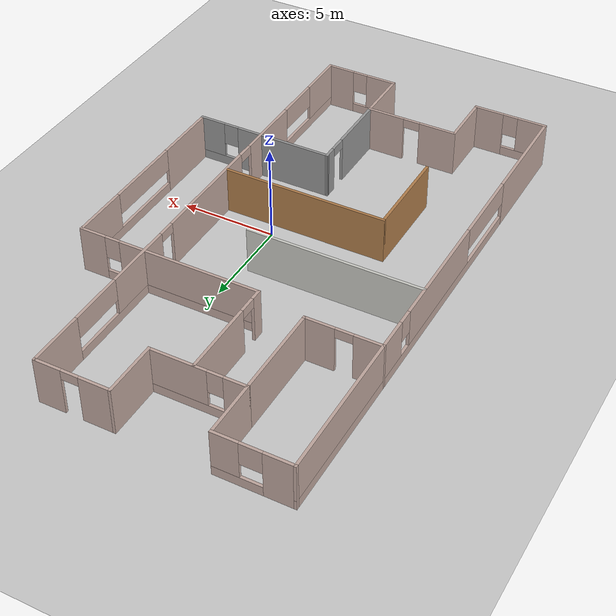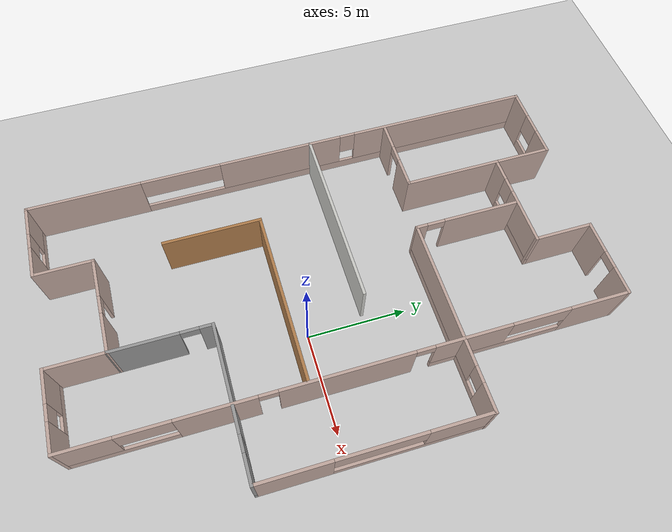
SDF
<sdf version="1.6">
 <world name="default">
  <light name="sun" type="directional">
   <pose>0 0 10 0 -0 0</pose>
   <diffuse>0.8 0.8 0.8 1</diffuse>
   <specular>0.2 0.2 0.2 1</specular>
   <attenuation>
    <range>1000</range>
    <constant>0.9</constant>
    <linear>0.01</linear>
    <quadratic>0.001</quadratic>
   </attenuation>
   <direction>-0.5 0.1 -0.9</direction>
  </light>
  <model name="ground_plane">
   <static>1</static>
   <link name="link">
    <collision name="collision">
     <geometry><plane><normal>0 0 1</normal><size>100 100</size></plane></geometry>
     <surface><friction><ode><mu>100</mu><mu2>50</mu2></ode></friction></surface>
    </collision>
    <visual name="visual">
     <cast_shadows>0</cast_shadows>
     <geometry><plane><normal>0 0 1</normal><size>100 100</size></plane></geometry>
     <material>
      <script><uri>file://media/materials/scripts/gazebo.material</uri><name>Gazebo/Grey</name></script>
     </material>
    </visual>
   </link>
  </model>
  <gravity>0 0 -9.8</gravity>
  <magnetic_field>6e-06 2.3e-05 -4.2e-05</magnetic_field>
  <atmosphere type="adiabatic"/>
  <physics name="default_physics" default="0" type="ode">
   <max_step_size>0.001</max_step_size>
   <real_time_factor>1</real_time_factor>
   <real_time_update_rate>1000</real_time_update_rate>
  </physics>
  <scene><ambient>0.4 0.4 0.4 1</ambient><background>0.7 0.7 0.7 1</background><shadows>1</shadows></scene>
  <spherical_coordinates>
   <surface_model>EARTH_WGS84</surface_model>
   <latitude_deg>0</latitude_deg>
   <longitude_deg>0</longitude_deg>
   <elevation>0</elevation>
   <heading_deg>0</heading_deg>
  </spherical_coordinates>
  <model name="single_floor">
   <pose>-1.52056 1.42908 0 0 0 -1.57006</pose>
   <link name="Wall_12">
    <pose>0 4.5203 0 0 -0 0</pose>
    <visual name="Wall_12_Visual_0">
     <pose>-11.8654 0 1.25 0 -0 0</pose>
     <geometry><box><size>3.0192 0.15 2.5</size></box></geometry>
     <material>
      <script><uri>file://media/materials/scripts/gazebo.material</uri><name>Gazebo/Grey</name></script>
      <ambient>0.760784 0.662745 0.627451 1</ambient>
     </material>
     <meta><layer>0</layer></meta>
    </visual>
    <collision name="Wall_12_Collision_0">
     <geometry><box><size>3.0192 0.15 2.5</size></box></geometry>
     <pose>-11.8654 0 1.25 0 -0 0</pose>
    </collision>
    <visual name="Wall_12_Visual_1">
     <pose>0.396367 0 1.25 0 -0 0</pose>
     <geometry><box><size>6.35864 0.15 2.5</size></box></geometry>
     <material>
      <script><uri>file://media/materials/scripts/gazebo.material</uri><name>Gazebo/Grey</name></script>
      <ambient>0.760784 0.662745 0.627451 1</ambient>
     </material>
     <meta><layer>0</layer></meta>
    </visual>
    <collision name="Wall_12_Collision_1">
     <geometry><box><size>6.35864 0.15 2.5</size></box></geometry>
     <pose>0.396367 0 1.25 0 -0 0</pose>
    </collision>
    <visual name="Wall_12_Visual_2">
     <pose>6.35303 0 1.25 0 -0 0</pose>
     <geometry><box><size>3.75468 0.15 2.5</size></box></geometry>
     <material>
      <script><uri>file://media/materials/scripts/gazebo.material</uri><name>Gazebo/Grey</name></script>
      <ambient>0.760784 0.662745 0.627451 1</ambient>
     </material>
     <meta><layer>0</layer></meta>
    </visual>
    <collision name="Wall_12_Collision_2">
     <geometry><box><size>3.75468 0.15 2.5</size></box></geometry>
     <pose>6.35303 0 1.25 0 -0 0</pose>
    </collision>
    <visual name="Wall_12_Visual_3">
     <pose>-7.01938 0 0.25 0 -0 0</pose>
     <geometry><box><size>6.67285 0.15 0.5</size></box></geometry>
     <material>
      <script><uri>file://media/materials/scripts/gazebo.material</uri><name>Gazebo/Grey</name></script>
      <ambient>0.760784 0.662745 0.627451 1</ambient>
     </material>
     <meta><layer>0</layer></meta>
    </visual>
    <collision name="Wall_12_Collision_3">
     <geometry><box><size>6.67285 0.15 0.5</size></box></geometry>
     <pose>-7.01938 0 0.25 0 -0 0</pose>
    </collision>
    <visual name="Wall_12_Visual_4">
     <pose>10.8027 0 0.25 0 -0 0</pose>
     <geometry><box><size>5.14463 0.15 0.5</size></box></geometry>
     <material>
      <script><uri>file://media/materials/scripts/gazebo.material</uri><name>Gazebo/Grey</name></script>
      <ambient>0.760784 0.662745 0.627451 1</ambient>
     </material>
     <meta><layer>0</layer></meta>
    </visual>
    <collision name="Wall_12_Collision_4">
     <geometry><box><size>5.14463 0.15 0.5</size></box></geometry>
     <pose>10.8027 0 0.25 0 -0 0</pose>
    </collision>
    <visual name="Wall_12_Visual_5">
     <pose>-5.57131 0 1.5 0 -0 0</pose>
     <geometry><box><size>3.77672 0.15 2</size></box></geometry>
     <material>
      <script><uri>file://media/materials/scripts/gazebo.material</uri><name>Gazebo/Grey</name></script>
      <ambient>0.760784 0.662745 0.627451 1</ambient>
     </material>
     <meta><layer>0</layer></meta>
    </visual>
    <collision name="Wall_12_Collision_5">
     <geometry><box><size>3.77672 0.15 2</size></box></geometry>
     <pose>-5.57131 0 1.5 0 -0 0</pose>
    </collision>
    <visual name="Wall_12_Visual_6">
     <pose>-5.57131 0 1.5 0 -0 0</pose>
     <geometry><box><size>3.77672 0.15 2</size></box></geometry>
     <material>
      <script><uri>file://media/materials/scripts/gazebo.material</uri><name>Gazebo/Grey</name></script>
      <ambient>0.760784 0.662745 0.627451 1</ambient>
     </material>
     <meta><layer>0</layer></meta>
    </visual>
    <collision name="Wall_12_Collision_6">
     <geometry><box><size>3.77672 0.15 2</size></box></geometry>
     <pose>-5.57131 0 1.5 0 -0 0</pose>
    </collision>
    <visual name="Wall_12_Visual_7">
     <pose>12.0657 0 1.5 0 -0 0</pose>
     <geometry><box><size>2.61859 0.15 2</size></box></geometry>
     <material>
      <script><uri>file://media/materials/scripts/gazebo.material</uri><name>Gazebo/Grey</name></script>
      <ambient>0.760784 0.662745 0.627451 1</ambient>
     </material>
     <meta><layer>0</layer></meta>
    </visual>
    <collision name="Wall_12_Collision_7">
     <geometry><box><size>2.61859 0.15 2</size></box></geometry>
     <pose>12.0657 0 1.5 0 -0 0</pose>
    </collision>
    <visual name="Wall_12_Visual_8">
     <pose>-8.90774 0 1.9 0 -0 0</pose>
     <geometry><box><size>2.89613 0.15 1.2</size></box></geometry>
     <material>
      <script><uri>file://media/materials/scripts/gazebo.material</uri><name>Gazebo/Grey</name></script>
      <ambient>0.760784 0.662745 0.627451 1</ambient>
     </material>
     <meta><layer>0</layer></meta>
    </visual>
    <collision name="Wall_12_Collision_8">
     <geometry><box><size>2.89613 0.15 1.2</size></box></geometry>
     <pose>-8.90774 0 1.9 0 -0 0</pose>
    </collision>
    <visual name="Wall_12_Visual_9">
     <pose>9.49339 0 1.9 0 -0 0</pose>
     <geometry><box><size>2.52604 0.15 1.2</size></box></geometry>
     <material>
      <script><uri>file://media/materials/scripts/gazebo.material</uri><name>Gazebo/Grey</name></script>
      <ambient>0.760784 0.662745 0.627451 1</ambient>
     </material>
     <meta><layer>0</layer></meta>
    </visual>
    <collision name="Wall_12_Collision_9">
     <geometry><box><size>2.52604 0.15 1.2</size></box></geometry>
     <pose>9.49339 0 1.9 0 -0 0</pose>
    </collision>
    <visual name="Wall_12_Visual_10">
     <pose>4.02569 0 2.25 0 -0 0</pose>
     <geometry><box><size>0.9 0.15 0.5</size></box></geometry>
     <material>
      <script><uri>file://media/materials/scripts/gazebo.material</uri><name>Gazebo/Grey</name></script>
      <ambient>0.760784 0.662745 0.627451 1</ambient>
     </material>
     <meta><layer>0</layer></meta>
    </visual>
    <collision name="Wall_12_Collision_10">
     <geometry><box><size>0.9 0.15 0.5</size></box></geometry>
     <pose>4.02569 0 2.25 0 -0 0</pose>
    </collision>
    <visual name="Wall_12_Visual_11">
     <pose>-3.23295 0 2.25 0 -0 0</pose>
     <geometry><box><size>0.9 0.15 0.5</size></box></geometry>
     <material>
      <script><uri>file://media/materials/scripts/gazebo.material</uri><name>Gazebo/Grey</name></script>
      <ambient>0.760784 0.662745 0.627451 1</ambient>
     </material>
     <meta><layer>0</layer></meta>
    </visual>
    <collision name="Wall_12_Collision_11">
     <geometry><box><size>0.9 0.15 0.5</size></box></geometry>
     <pose>-3.23295 0 2.25 0 -0 0</pose>
    </collision>
    <visual name="Wall_12_Visual_12">
     <pose>-3.23295 0 2.25 0 -0 0</pose>
     <geometry><box><size>0.9 0.15 0.5</size></box></geometry>
     <material>
      <script><uri>file://media/materials/scripts/gazebo.material</uri><name>Gazebo/Grey</name></script>
      <ambient>0.760784 0.662745 0.627451 1</ambient>
     </material>
     <meta><layer>0</layer></meta>
    </visual>
    <collision name="Wall_12_Collision_12">
     <geometry><box><size>0.9 0.15 0.5</size></box></geometry>
     <pose>-3.23295 0 2.25 0 -0 0</pose>
    </collision>
   </link>
   <link name="Wall_124">
    <pose>0.326152 8.01661 0 0 -0 3.14159</pose>
    <visual name="Wall_124_Visual_0">
     <pose>-3.58525 0 1.25 0 -0 0</pose>
     <geometry><box><size>3.5795 0.15 2.5</size></box></geometry>
     <material>
      <script><uri>file://media/materials/scripts/gazebo.material</uri><name>Gazebo/Grey</name></script>
      <ambient>0.760784 0.662745 0.627451 1</ambient>
     </material>
     <meta><layer>0</layer></meta>
    </visual>
    <collision name="Wall_124_Collision_0">
     <geometry><box><size>3.5795 0.15 2.5</size></box></geometry>
     <pose>-3.58525 0 1.25 0 -0 0</pose>
    </collision>
    <visual name="Wall_124_Visual_1">
     <pose>1.78975 0 0.25 0 -0 0</pose>
     <geometry><box><size>7.17051 0.15 0.5</size></box></geometry>
     <material>
      <script><uri>file://media/materials/scripts/gazebo.material</uri><name>Gazebo/Grey</name></script>
      <ambient>0.760784 0.662745 0.627451 1</ambient>
     </material>
     <meta><layer>0</layer></meta>
    </visual>
    <collision name="Wall_124_Collision_1">
     <geometry><box><size>7.17051 0.15 0.5</size></box></geometry>
     <pose>1.78975 0 0.25 0 -0 0</pose>
    </collision>
    <visual name="Wall_124_Visual_2">
     <pose>3.89635 0 1.5 0 -0 0</pose>
     <geometry><box><size>2.9573 0.15 2</size></box></geometry>
     <material>
      <script><uri>file://media/materials/scripts/gazebo.material</uri><name>Gazebo/Grey</name></script>
      <ambient>0.760784 0.662745 0.627451 1</ambient>
     </material>
     <meta><layer>0</layer></meta>
    </visual>
    <collision name="Wall_124_Collision_2">
     <geometry><box><size>2.9573 0.15 2</size></box></geometry>
     <pose>3.89635 0 1.5 0 -0 0</pose>
    </collision>
    <visual name="Wall_124_Visual_3">
     <pose>0.3111 0 1.9 0 -0 0</pose>
     <geometry><box><size>4.21321 0.15 1.2</size></box></geometry>
     <material>
      <script><uri>file://media/materials/scripts/gazebo.material</uri><name>Gazebo/Grey</name></script>
      <ambient>0.760784 0.662745 0.627451 1</ambient>
     </material>
     <meta><layer>0</layer></meta>
    </visual>
    <collision name="Wall_124_Collision_3">
     <geometry><box><size>4.21321 0.15 1.2</size></box></geometry>
     <pose>0.3111 0 1.9 0 -0 0</pose>
    </collision>
   </link>
   <link name="Wall_13">
    <pose>13.3 2.59531 0 0 0 -1.5708</pose>
    <visual name="Wall_13_Visual_0">
     <pose>-1.23668 0 1.25 0 -0 0</pose>
     <geometry><box><size>1.52664 0.15 2.5</size></box></geometry>
     <material>
      <script><uri>file://media/materials/scripts/gazebo.material</uri><name>Gazebo/Grey</name></script>
      <ambient>0.760784 0.662745 0.627451 1</ambient>
     </material>
     <meta><layer>0</layer></meta>
    </visual>
    <collision name="Wall_13_Collision_0">
     <geometry><box><size>1.52664 0.15 2.5</size></box></geometry>
     <pose>-1.23668 0 1.25 0 -0 0</pose>
    </collision>
    <visual name="Wall_13_Visual_1">
     <pose>0.76332 0 0.25 0 -0 0</pose>
     <geometry><box><size>2.47336 0.15 0.5</size></box></geometry>
     <material>
      <script><uri>file://media/materials/scripts/gazebo.material</uri><name>Gazebo/Grey</name></script>
      <ambient>0.760784 0.662745 0.627451 1</ambient>
     </material>
     <meta><layer>0</layer></meta>
    </visual>
    <collision name="Wall_13_Collision_1">
     <geometry><box><size>2.47336 0.15 0.5</size></box></geometry>
     <pose>0.76332 0 0.25 0 -0 0</pose>
    </collision>
    <visual name="Wall_13_Visual_2">
     <pose>1.16332 0 1.5 0 -0 0</pose>
     <geometry><box><size>1.67336 0.15 2</size></box></geometry>
     <material>
      <script><uri>file://media/materials/scripts/gazebo.material</uri><name>Gazebo/Grey</name></script>
      <ambient>0.760784 0.662745 0.627451 1</ambient>
     </material>
     <meta><layer>0</layer></meta>
    </visual>
    <collision name="Wall_13_Collision_2">
     <geometry><box><size>1.67336 0.15 2</size></box></geometry>
     <pose>1.16332 0 1.5 0 -0 0</pose>
    </collision>
    <visual name="Wall_13_Visual_3">
     <pose>-0.07336 0 1.9 0 -0 0</pose>
     <geometry><box><size>0.8 0.15 1.2</size></box></geometry>
     <material>
      <script><uri>file://media/materials/scripts/gazebo.material</uri><name>Gazebo/Grey</name></script>
      <ambient>0.760784 0.662745 0.627451 1</ambient>
     </material>
     <meta><layer>0</layer></meta>
    </visual>
    <collision name="Wall_13_Collision_3">
     <geometry><box><size>0.8 0.15 1.2</size></box></geometry>
     <pose>-0.07336 0 1.9 0 -0 0</pose>
    </collision>
   </link>
   <link name="Wall_14">
    <collision name="Wall_14_Collision">
     <geometry><box><size>3 0.15 2.5</size></box></geometry>
     <pose>0 0 1.25 0 -0 0</pose>
    </collision>
    <visual name="Wall_14_Visual">
     <pose>0 0 1.25 0 -0 0</pose>
     <geometry><box><size>3 0.15 2.5</size></box></geometry>
     <material>
      <script><uri>file://media/materials/scripts/gazebo.material</uri><name>Gazebo/Grey</name></script>
      <ambient>0.760784 0.662745 0.627451 1</ambient>
     </material>
     <meta><layer>0</layer></meta>
    </visual>
    <pose>11.875 0.670305 0 0 -0 3.14159</pose>
   </link>
   <link name="Wall_15">
    <pose>10.45 -1.75469 0 0 0 -1.5708</pose>
    <visual name="Wall_15_Visual_0">
     <pose>-1.46979 0 1.25 0 -0 0</pose>
     <geometry><box><size>2.06043 0.15 2.5</size></box></geometry>
     <material>
      <script><uri>file://media/materials/scripts/gazebo.material</uri><name>Gazebo/Grey</name></script>
      <ambient>0.760784 0.662745 0.627451 1</ambient>
     </material>
     <meta><layer>0</layer></meta>
    </visual>
    <collision name="Wall_15_Collision_0">
     <geometry><box><size>2.06043 0.15 2.5</size></box></geometry>
     <pose>-1.46979 0 1.25 0 -0 0</pose>
    </collision>
    <visual name="Wall_15_Visual_1">
     <pose>1.48021 0 1.25 0 -0 0</pose>
     <geometry><box><size>2.03957 0.15 2.5</size></box></geometry>
     <material>
      <script><uri>file://media/materials/scripts/gazebo.material</uri><name>Gazebo/Grey</name></script>
      <ambient>0.760784 0.662745 0.627451 1</ambient>
     </material>
     <meta><layer>0</layer></meta>
    </visual>
    <collision name="Wall_15_Collision_1">
     <geometry><box><size>2.03957 0.15 2.5</size></box></geometry>
     <pose>1.48021 0 1.25 0 -0 0</pose>
    </collision>
    <visual name="Wall_15_Visual_2">
     <pose>0.010427 0 2.25 0 -0 0</pose>
     <geometry><box><size>0.9 0.15 0.5</size></box></geometry>
     <material>
      <script><uri>file://media/materials/scripts/gazebo.material</uri><name>Gazebo/Grey</name></script>
      <ambient>0.760784 0.662745 0.627451 1</ambient>
     </material>
     <meta><layer>0</layer></meta>
    </visual>
    <collision name="Wall_15_Collision_2">
     <geometry><box><size>0.9 0.15 0.5</size></box></geometry>
     <pose>0.010427 0 2.25 0 -0 0</pose>
    </collision>
   </link>
   <link name="Wall_16">
    <collision name="Wall_16_Collision">
     <geometry><box><size>3 0.15 2.5</size></box></geometry>
     <pose>0 0 1.25 0 -0 0</pose>
    </collision>
    <visual name="Wall_16_Visual">
     <pose>0 0 1.25 0 -0 0</pose>
     <geometry><box><size>3 0.15 2.5</size></box></geometry>
     <material>
      <script><uri>file://media/materials/scripts/gazebo.material</uri><name>Gazebo/Grey</name></script>
      <ambient>0.760784 0.662745 0.627451 1</ambient>
     </material>
     <meta><layer>0</layer></meta>
    </visual>
    <pose>11.875 -4.17969 0 0 -0 0</pose>
   </link>
   <link name="Wall_17">
    <pose>13.3 -6.1047 0 0 0 -1.5708</pose>
    <visual name="Wall_17_Visual_0">
     <pose>-1.18199 0 1.25 0 -0 0</pose>
     <geometry><box><size>1.63601 0.15 2.5</size></box></geometry>
     <material>
      <script><uri>file://media/materials/scripts/gazebo.material</uri><name>Gazebo/Grey</name></script>
      <ambient>0.760784 0.662745 0.627451 1</ambient>
     </material>
     <meta><layer>0</layer></meta>
    </visual>
    <collision name="Wall_17_Collision_0">
     <geometry><box><size>1.63601 0.15 2.5</size></box></geometry>
     <pose>-1.18199 0 1.25 0 -0 0</pose>
    </collision>
    <visual name="Wall_17_Visual_1">
     <pose>0.818006 0 0.25 0 -0 0</pose>
     <geometry><box><size>2.36399 0.15 0.5</size></box></geometry>
     <material>
      <script><uri>file://media/materials/scripts/gazebo.material</uri><name>Gazebo/Grey</name></script>
      <ambient>0.760784 0.662745 0.627451 1</ambient>
     </material>
     <meta><layer>0</layer></meta>
    </visual>
    <collision name="Wall_17_Collision_1">
     <geometry><box><size>2.36399 0.15 0.5</size></box></geometry>
     <pose>0.818006 0 0.25 0 -0 0</pose>
    </collision>
    <visual name="Wall_17_Visual_2">
     <pose>1.21801 0 1.5 0 -0 0</pose>
     <geometry><box><size>1.56399 0.15 2</size></box></geometry>
     <material>
      <script><uri>file://media/materials/scripts/gazebo.material</uri><name>Gazebo/Grey</name></script>
      <ambient>0.760784 0.662745 0.627451 1</ambient>
     </material>
     <meta><layer>0</layer></meta>
    </visual>
    <collision name="Wall_17_Collision_2">
     <geometry><box><size>1.56399 0.15 2</size></box></geometry>
     <pose>1.21801 0 1.5 0 -0 0</pose>
    </collision>
    <visual name="Wall_17_Visual_3">
     <pose>0.036011 0 1.9 0 -0 0</pose>
     <geometry><box><size>0.8 0.15 1.2</size></box></geometry>
     <material>
      <script><uri>file://media/materials/scripts/gazebo.material</uri><name>Gazebo/Grey</name></script>
      <ambient>0.760784 0.662745 0.627451 1</ambient>
     </material>
     <meta><layer>0</layer></meta>
    </visual>
    <collision name="Wall_17_Collision_3">
     <geometry><box><size>0.8 0.15 1.2</size></box></geometry>
     <pose>0.036011 0 1.9 0 -0 0</pose>
    </collision>
   </link>
   <link name="Wall_18">
    <pose>0 -8.0297 0 0 -0 3.14159</pose>
    <visual name="Wall_18_Visual_0">
     <pose>-10.4624 0 1.25 0 -0 0</pose>
     <geometry><box><size>5.82521 0.15 2.5</size></box></geometry>
     <material>
      <script><uri>file://media/materials/scripts/gazebo.material</uri><name>Gazebo/Grey</name></script>
      <ambient>0.760784 0.662745 0.627451 1</ambient>
     </material>
     <meta><layer>0</layer></meta>
    </visual>
    <collision name="Wall_18_Collision_0">
     <geometry><box><size>5.82521 0.15 2.5</size></box></geometry>
     <pose>-10.4624 0 1.25 0 -0 0</pose>
    </collision>
    <visual name="Wall_18_Visual_1">
     <pose>2.9126 0 0.25 0 -0 0</pose>
     <geometry><box><size>20.9248 0.15 0.5</size></box></geometry>
     <material>
      <script><uri>file://media/materials/scripts/gazebo.material</uri><name>Gazebo/Grey</name></script>
      <ambient>0.760784 0.662745 0.627451 1</ambient>
     </material>
     <meta><layer>0</layer></meta>
    </visual>
    <collision name="Wall_18_Collision_1">
     <geometry><box><size>20.9248 0.15 0.5</size></box></geometry>
     <pose>2.9126 0 0.25 0 -0 0</pose>
    </collision>
    <visual name="Wall_18_Visual_2">
     <pose>-0.153899 0 1.5 0 -0 0</pose>
     <geometry><box><size>6.51142 0.15 2</size></box></geometry>
     <material>
      <script><uri>file://media/materials/scripts/gazebo.material</uri><name>Gazebo/Grey</name></script>
      <ambient>0.760784 0.662745 0.627451 1</ambient>
     </material>
     <meta><layer>0</layer></meta>
    </visual>
    <collision name="Wall_18_Collision_2">
     <geometry><box><size>6.51142 0.15 2</size></box></geometry>
     <pose>-0.153899 0 1.5 0 -0 0</pose>
    </collision>
    <visual name="Wall_18_Visual_3">
     <pose>8.63841 0 1.5 0 -0 0</pose>
     <geometry><box><size>9.47319 0.15 2</size></box></geometry>
     <material>
      <script><uri>file://media/materials/scripts/gazebo.material</uri><name>Gazebo/Grey</name></script>
      <ambient>0.760784 0.662745 0.627451 1</ambient>
     </material>
     <meta><layer>0</layer></meta>
    </visual>
    <collision name="Wall_18_Collision_3">
     <geometry><box><size>9.47319 0.15 2</size></box></geometry>
     <pose>8.63841 0 1.5 0 -0 0</pose>
    </collision>
    <visual name="Wall_18_Visual_4">
     <pose>-5.4797 0 1.9 0 -0 0</pose>
     <geometry><box><size>4.14018 0.15 1.2</size></box></geometry>
     <material>
      <script><uri>file://media/materials/scripts/gazebo.material</uri><name>Gazebo/Grey</name></script>
      <ambient>0.760784 0.662745 0.627451 1</ambient>
     </material>
     <meta><layer>0</layer></meta>
    </visual>
    <collision name="Wall_18_Collision_4">
     <geometry><box><size>4.14018 0.15 1.2</size></box></geometry>
     <pose>-5.4797 0 1.9 0 -0 0</pose>
    </collision>
    <visual name="Wall_18_Visual_5">
     <pose>3.50181 0 1.9 0 -0 0</pose>
     <geometry><box><size>0.8 0.15 1.2</size></box></geometry>
     <material>
      <script><uri>file://media/materials/scripts/gazebo.material</uri><name>Gazebo/Grey</name></script>
      <ambient>0.760784 0.662745 0.627451 1</ambient>
     </material>
     <meta><layer>0</layer></meta>
    </visual>
    <collision name="Wall_18_Collision_5">
     <geometry><box><size>0.8 0.15 1.2</size></box></geometry>
     <pose>3.50181 0 1.9 0 -0 0</pose>
    </collision>
   </link>
   <link name="Wall_19">
    <pose>-13.3 -6.1047 0 0 -0 1.5708</pose>
    <visual name="Wall_19_Visual_0">
     <pose>-1.22646 0 1.25 0 -0 0</pose>
     <geometry><box><size>1.54707 0.15 2.5</size></box></geometry>
     <material>
      <script><uri>file://media/materials/scripts/gazebo.material</uri><name>Gazebo/Grey</name></script>
      <ambient>0.760784 0.662745 0.627451 1</ambient>
     </material>
     <meta><layer>0</layer></meta>
    </visual>
    <collision name="Wall_19_Collision_0">
     <geometry><box><size>1.54707 0.15 2.5</size></box></geometry>
     <pose>-1.22646 0 1.25 0 -0 0</pose>
    </collision>
    <visual name="Wall_19_Visual_1">
     <pose>0.773535 0 0.25 0 -0 0</pose>
     <geometry><box><size>2.45293 0.15 0.5</size></box></geometry>
     <material>
      <script><uri>file://media/materials/scripts/gazebo.material</uri><name>Gazebo/Grey</name></script>
      <ambient>0.760784 0.662745 0.627451 1</ambient>
     </material>
     <meta><layer>0</layer></meta>
    </visual>
    <collision name="Wall_19_Collision_1">
     <geometry><box><size>2.45293 0.15 0.5</size></box></geometry>
     <pose>0.773535 0 0.25 0 -0 0</pose>
    </collision>
    <visual name="Wall_19_Visual_2">
     <pose>1.32306 0 1.5 0 -0 0</pose>
     <geometry><box><size>1.35388 0.15 2</size></box></geometry>
     <material>
      <script><uri>file://media/materials/scripts/gazebo.material</uri><name>Gazebo/Grey</name></script>
      <ambient>0.760784 0.662745 0.627451 1</ambient>
     </material>
     <meta><layer>0</layer></meta>
    </visual>
    <collision name="Wall_19_Collision_2">
     <geometry><box><size>1.35388 0.15 2</size></box></geometry>
     <pose>1.32306 0 1.5 0 -0 0</pose>
    </collision>
    <visual name="Wall_19_Visual_3">
     <pose>0.096595 0 1.9 0 -0 0</pose>
     <geometry><box><size>1.09905 0.15 1.2</size></box></geometry>
     <material>
      <script><uri>file://media/materials/scripts/gazebo.material</uri><name>Gazebo/Grey</name></script>
      <ambient>0.760784 0.662745 0.627451 1</ambient>
     </material>
     <meta><layer>0</layer></meta>
    </visual>
    <collision name="Wall_19_Collision_3">
     <geometry><box><size>1.09905 0.15 1.2</size></box></geometry>
     <pose>0.096595 0 1.9 0 -0 0</pose>
    </collision>
   </link>
   <link name="Wall_20">
    <collision name="Wall_20_Collision">
     <geometry><box><size>3 0.15 2.5</size></box></geometry>
     <pose>0 0 1.25 0 -0 0</pose>
    </collision>
    <visual name="Wall_20_Visual">
     <pose>0 0 1.25 0 -0 0</pose>
     <geometry><box><size>3 0.15 2.5</size></box></geometry>
     <material>
      <script><uri>file://media/materials/scripts/gazebo.material</uri><name>Gazebo/Grey</name></script>
      <ambient>0.760784 0.662745 0.627451 1</ambient>
     </material>
     <meta><layer>0</layer></meta>
    </visual>
    <pose>-11.875 -4.17969 0 0 -0 0</pose>
   </link>
   <link name="Wall_21">
    <pose>-10.45 -1.75469 0 0 -0 1.5708</pose>
    <visual name="Wall_21_Visual_0">
     <pose>-1.88532 0 1.25 0 -0 0</pose>
     <geometry><box><size>1.22936 0.15 2.5</size></box></geometry>
     <material>
      <script><uri>file://media/materials/scripts/gazebo.material</uri><name>Gazebo/Grey</name></script>
      <ambient>0.760784 0.662745 0.627451 1</ambient>
     </material>
     <meta><layer>0</layer></meta>
    </visual>
    <collision name="Wall_21_Collision_0">
     <geometry><box><size>1.22936 0.15 2.5</size></box></geometry>
     <pose>-1.88532 0 1.25 0 -0 0</pose>
    </collision>
    <visual name="Wall_21_Visual_1">
     <pose>0.614679 0 0.25 0 -0 0</pose>
     <geometry><box><size>3.77064 0.15 0.5</size></box></geometry>
     <material>
      <script><uri>file://media/materials/scripts/gazebo.material</uri><name>Gazebo/Grey</name></script>
      <ambient>0.760784 0.662745 0.627451 1</ambient>
     </material>
     <meta><layer>0</layer></meta>
    </visual>
    <collision name="Wall_21_Collision_1">
     <geometry><box><size>3.77064 0.15 0.5</size></box></geometry>
     <pose>0.614679 0 0.25 0 -0 0</pose>
    </collision>
    <visual name="Wall_21_Visual_2">
     <pose>1.01468 0 1.5 0 -0 0</pose>
     <geometry><box><size>2.97064 0.15 2</size></box></geometry>
     <material>
      <script><uri>file://media/materials/scripts/gazebo.material</uri><name>Gazebo/Grey</name></script>
      <ambient>0.760784 0.662745 0.627451 1</ambient>
     </material>
     <meta><layer>0</layer></meta>
    </visual>
    <collision name="Wall_21_Collision_2">
     <geometry><box><size>2.97064 0.15 2</size></box></geometry>
     <pose>1.01468 0 1.5 0 -0 0</pose>
    </collision>
    <visual name="Wall_21_Visual_3">
     <pose>-0.870641 0 1.9 0 -0 0</pose>
     <geometry><box><size>0.8 0.15 1.2</size></box></geometry>
     <material>
      <script><uri>file://media/materials/scripts/gazebo.material</uri><name>Gazebo/Grey</name></script>
      <ambient>0.760784 0.662745 0.627451 1</ambient>
     </material>
     <meta><layer>0</layer></meta>
    </visual>
    <collision name="Wall_21_Collision_3">
     <geometry><box><size>0.8 0.15 1.2</size></box></geometry>
     <pose>-0.870641 0 1.9 0 -0 0</pose>
    </collision>
   </link>
   <link name="Wall_22">
    <collision name="Wall_22_Collision">
     <geometry><box><size>3 0.15 2.5</size></box></geometry>
     <pose>0 0 1.25 0 -0 0</pose>
    </collision>
    <visual name="Wall_22_Visual">
     <pose>0 0 1.25 0 -0 0</pose>
     <geometry><box><size>3 0.15 2.5</size></box></geometry>
     <material>
      <script><uri>file://media/materials/scripts/gazebo.material</uri><name>Gazebo/Grey</name></script>
      <ambient>0.760784 0.662745 0.627451 1</ambient>
     </material>
     <meta><layer>0</layer></meta>
    </visual>
    <pose>-11.875 0.670305 0 0 -0 3.14159</pose>
   </link>
   <link name="Wall_23">
    <pose>-13.3 2.59531 0 0 -0 1.5708</pose>
    <visual name="Wall_23_Visual_0">
     <pose>-1.16623 0 1.25 0 -0 0</pose>
     <geometry><box><size>1.66753 0.15 2.5</size></box></geometry>
     <material>
      <script><uri>file://media/materials/scripts/gazebo.material</uri><name>Gazebo/Grey</name></script>
      <ambient>0.760784 0.662745 0.627451 1</ambient>
     </material>
     <meta><layer>0</layer></meta>
    </visual>
    <collision name="Wall_23_Collision_0">
     <geometry><box><size>1.66753 0.15 2.5</size></box></geometry>
     <pose>-1.16623 0 1.25 0 -0 0</pose>
    </collision>
    <visual name="Wall_23_Visual_1">
     <pose>1.28377 0 1.25 0 -0 0</pose>
     <geometry><box><size>1.43247 0.15 2.5</size></box></geometry>
     <material>
      <script><uri>file://media/materials/scripts/gazebo.material</uri><name>Gazebo/Grey</name></script>
      <ambient>0.760784 0.662745 0.627451 1</ambient>
     </material>
     <meta><layer>0</layer></meta>
    </visual>
    <collision name="Wall_23_Collision_1">
     <geometry><box><size>1.43247 0.15 2.5</size></box></geometry>
     <pose>1.28377 0 1.25 0 -0 0</pose>
    </collision>
    <visual name="Wall_23_Visual_2">
     <pose>0.117534 0 2.25 0 -0 0</pose>
     <geometry><box><size>0.9 0.15 0.5</size></box></geometry>
     <material>
      <script><uri>file://media/materials/scripts/gazebo.material</uri><name>Gazebo/Grey</name></script>
      <ambient>0.760784 0.662745 0.627451 1</ambient>
     </material>
     <meta><layer>0</layer></meta>
    </visual>
    <collision name="Wall_23_Collision_2">
     <geometry><box><size>0.9 0.15 0.5</size></box></geometry>
     <pose>0.117534 0 2.25 0 -0 0</pose>
    </collision>
   </link>
   <link name="Wall_26">
    <pose>8.03808 0.668458 0 0 0 -3.14083</pose>
    <visual name="Wall_26_Visual_0">
     <pose>-0.810666 0 1.25 0 -0 0</pose>
     <geometry><box><size>3.35252 0.15 2.5</size></box></geometry>
     <material>
      <script><uri>file://media/materials/scripts/gazebo.material</uri><name>Gazebo/Grey</name></script>
      <ambient>1 1 1 1</ambient>
     </material>
     <meta><layer>0</layer></meta>
    </visual>
    <collision name="Wall_26_Collision_0">
     <geometry><box><size>3.35252 0.15 2.5</size></box></geometry>
     <pose>-0.810666 0 1.25 0 -0 0</pose>
    </collision>
    <visual name="Wall_26_Visual_1">
     <pose>2.12626 0 1.25 0 -0 0</pose>
     <geometry><box><size>0.721333 0.15 2.5</size></box></geometry>
     <material>
      <script><uri>file://media/materials/scripts/gazebo.material</uri><name>Gazebo/Grey</name></script>
      <ambient>1 1 1 1</ambient>
     </material>
     <meta><layer>0</layer></meta>
    </visual>
    <collision name="Wall_26_Collision_1">
     <geometry><box><size>0.721333 0.15 2.5</size></box></geometry>
     <pose>2.12626 0 1.25 0 -0 0</pose>
    </collision>
    <visual name="Wall_26_Visual_2">
     <pose>1.31559 0 2.25 0 -0 0</pose>
     <geometry><box><size>0.9 0.15 0.5</size></box></geometry>
     <material>
      <script><uri>file://media/materials/scripts/gazebo.material</uri><name>Gazebo/Grey</name></script>
      <ambient>1 1 1 1</ambient>
     </material>
     <meta><layer>0</layer></meta>
    </visual>
    <collision name="Wall_26_Collision_2">
     <geometry><box><size>0.9 0.15 0.5</size></box></geometry>
     <pose>1.31559 0 2.25 0 -0 0</pose>
    </collision>
   </link>
   <link name="Wall_27">
    <pose>5.62615 4.34161 0 0 -0 1.5708</pose>
    <visual name="Wall_27_Visual_0">
     <pose>-1.11423 0 1.25 0 -0 0</pose>
     <geometry><box><size>5.27154 0.15 2.5</size></box></geometry>
     <material>
      <script><uri>file://media/materials/scripts/gazebo.material</uri><name>Gazebo/Grey</name></script>
      <ambient>1 1 1 1</ambient>
     </material>
     <meta><layer>0</layer></meta>
    </visual>
    <collision name="Wall_27_Collision_0">
     <geometry><box><size>5.27154 0.15 2.5</size></box></geometry>
     <pose>-1.11423 0 1.25 0 -0 0</pose>
    </collision>
    <visual name="Wall_27_Visual_1">
     <pose>2.63577 0 0.25 0 -0 0</pose>
     <geometry><box><size>2.22846 0.15 0.5</size></box></geometry>
     <material>
      <script><uri>file://media/materials/scripts/gazebo.material</uri><name>Gazebo/Grey</name></script>
      <ambient>1 1 1 1</ambient>
     </material>
     <meta><layer>0</layer></meta>
    </visual>
    <collision name="Wall_27_Collision_1">
     <geometry><box><size>2.22846 0.15 0.5</size></box></geometry>
     <pose>2.63577 0 0.25 0 -0 0</pose>
    </collision>
    <visual name="Wall_27_Visual_2">
     <pose>3.03577 0 1.5 0 -0 0</pose>
     <geometry><box><size>1.42847 0.15 2</size></box></geometry>
     <material>
      <script><uri>file://media/materials/scripts/gazebo.material</uri><name>Gazebo/Grey</name></script>
      <ambient>1 1 1 1</ambient>
     </material>
     <meta><layer>0</layer></meta>
    </visual>
    <collision name="Wall_27_Collision_2">
     <geometry><box><size>1.42847 0.15 2</size></box></geometry>
     <pose>3.03577 0 1.5 0 -0 0</pose>
    </collision>
    <visual name="Wall_27_Visual_3">
     <pose>1.92153 0 1.9 0 -0 0</pose>
     <geometry><box><size>0.8 0.15 1.2</size></box></geometry>
     <material>
      <script><uri>file://media/materials/scripts/gazebo.material</uri><name>Gazebo/Grey</name></script>
      <ambient>1 1 1 1</ambient>
     </material>
     <meta><layer>0</layer></meta>
    </visual>
    <collision name="Wall_27_Collision_3">
     <geometry><box><size>0.8 0.15 1.2</size></box></geometry>
     <pose>1.92153 0 1.9 0 -0 0</pose>
    </collision>
   </link>
   <link name="Wall_29">
    <collision name="Wall_29_Collision">
     <geometry><box><size>5 0.15 2.5</size></box></geometry>
     <pose>0 0 1.25 0 -0 0</pose>
    </collision>
    <visual name="Wall_29_Visual">
     <pose>0 0 1.25 0 -0 0</pose>
     <geometry><box><size>5 0.15 2.5</size></box></geometry>
     <material>
      <script><uri>file://media/materials/scripts/gazebo.material</uri><name>Gazebo/Grey</name></script>
      <ambient>0.760784 0.662745 0.627451 1</ambient>
     </material>
     <meta><layer>0</layer></meta>
    </visual>
    <pose>-8.025 -4.17969 0 0 -0 0</pose>
   </link>
   <link name="Wall_30">
    <pose>-5.6 -6.1047 0 0 0 -1.5708</pose>
    <visual name="Wall_30_Visual_0">
     <pose>-1.19988 0 1.25 0 -0 0</pose>
     <geometry><box><size>1.60024 0.15 2.5</size></box></geometry>
     <material>
      <script><uri>file://media/materials/scripts/gazebo.material</uri><name>Gazebo/Grey</name></script>
      <ambient>0.760784 0.662745 0.627451 1</ambient>
     </material>
     <meta><layer>0</layer></meta>
    </visual>
    <collision name="Wall_30_Collision_0">
     <geometry><box><size>1.60024 0.15 2.5</size></box></geometry>
     <pose>-1.19988 0 1.25 0 -0 0</pose>
    </collision>
    <visual name="Wall_30_Visual_1">
     <pose>1.25012 0 1.25 0 -0 0</pose>
     <geometry><box><size>1.49976 0.15 2.5</size></box></geometry>
     <material>
      <script><uri>file://media/materials/scripts/gazebo.material</uri><name>Gazebo/Grey</name></script>
      <ambient>0.760784 0.662745 0.627451 1</ambient>
     </material>
     <meta><layer>0</layer></meta>
    </visual>
    <collision name="Wall_30_Collision_1">
     <geometry><box><size>1.49976 0.15 2.5</size></box></geometry>
     <pose>1.25012 0 1.25 0 -0 0</pose>
    </collision>
    <visual name="Wall_30_Visual_2">
     <pose>0.050243 0 2.25 0 -0 0</pose>
     <geometry><box><size>0.9 0.15 0.5</size></box></geometry>
     <material>
      <script><uri>file://media/materials/scripts/gazebo.material</uri><name>Gazebo/Grey</name></script>
      <ambient>0.760784 0.662745 0.627451 1</ambient>
     </material>
     <meta><layer>0</layer></meta>
    </visual>
    <collision name="Wall_30_Collision_2">
     <geometry><box><size>0.9 0.15 0.5</size></box></geometry>
     <pose>0.050243 0 2.25 0 -0 0</pose>
    </collision>
   </link>
   <link name="Wall_34">
    <collision name="Wall_34_Collision">
     <geometry><box><size>8.75 0.15 2.5</size></box></geometry>
     <pose>0 0 1.25 0 -0 0</pose>
    </collision>
    <visual name="Wall_34_Visual">
     <pose>0 0 1.25 0 -0 0</pose>
     <geometry><box><size>8.75 0.15 2.5</size></box></geometry>
     <material>
      <script><uri>file://media/materials/scripts/gazebo.material</uri><name>Gazebo/Wood</name></script>
      <ambient>1 1 1 1</ambient>
     </material>
     <meta><layer>0</layer></meta>
    </visual>
    <pose>2.21994 0.116601 0 0 0 -1.5708</pose>
   </link>
   <link name="Wall_36">
    <collision name="Wall_36_Collision">
     <geometry><box><size>9.25 0.15 2.5</size></box></geometry>
     <pose>0 0 1.25 0 -0 0</pose>
    </collision>
    <visual name="Wall_36_Visual">
     <pose>0 0 1.25 0 -0 0</pose>
     <geometry><box><size>9.25 0.15 2.5</size></box></geometry>
     <material>
      <script><uri>file://media/materials/scripts/gazebo.material</uri><name>Gazebo/CeilingTiled</name></script>
      <ambient>1 1 1 1</ambient>
     </material>
     <meta><layer>0</layer></meta>
    </visual>
    <pose>-1.45082 -3.45693 0 0 -0 1.5708</pose>
   </link>
   <link name="Wall_38">
    <pose>-5.06952 3.22969 0 0 0 -1.5708</pose>
    <visual name="Wall_38_Visual_0">
     <pose>-4.16069 0 1.25 0 -0 0</pose>
     <geometry><box><size>1.42862 0.15 2.5</size></box></geometry>
     <material>
      <script><uri>file://media/materials/scripts/gazebo.material</uri><name>Gazebo/Grey</name></script>
      <ambient>0.760784 0.662745 0.627451 1</ambient>
     </material>
     <meta><layer>0</layer></meta>
    </visual>
    <collision name="Wall_38_Collision_0">
     <geometry><box><size>1.42862 0.15 2.5</size></box></geometry>
     <pose>-4.16069 0 1.25 0 -0 0</pose>
    </collision>
    <visual name="Wall_38_Visual_1">
     <pose>0.714309 0 0.25 0 -0 0</pose>
     <geometry><box><size>8.32138 0.15 0.5</size></box></geometry>
     <material>
      <script><uri>file://media/materials/scripts/gazebo.material</uri><name>Gazebo/Grey</name></script>
      <ambient>0.760784 0.662745 0.627451 1</ambient>
     </material>
     <meta><layer>0</layer></meta>
    </visual>
    <collision name="Wall_38_Collision_1">
     <geometry><box><size>8.32138 0.15 0.5</size></box></geometry>
     <pose>0.714309 0 0.25 0 -0 0</pose>
    </collision>
    <visual name="Wall_38_Visual_2">
     <pose>1.11431 0 1.5 0 -0 0</pose>
     <geometry><box><size>7.52138 0.15 2</size></box></geometry>
     <material>
      <script><uri>file://media/materials/scripts/gazebo.material</uri><name>Gazebo/Grey</name></script>
      <ambient>0.760784 0.662745 0.627451 1</ambient>
     </material>
     <meta><layer>0</layer></meta>
    </visual>
    <collision name="Wall_38_Collision_2">
     <geometry><box><size>7.52138 0.15 2</size></box></geometry>
     <pose>1.11431 0 1.5 0 -0 0</pose>
    </collision>
    <visual name="Wall_38_Visual_3">
     <pose>-3.04638 0 1.9 0 -0 0</pose>
     <geometry><box><size>0.8 0.15 1.2</size></box></geometry>
     <material>
      <script><uri>file://media/materials/scripts/gazebo.material</uri><name>Gazebo/Grey</name></script>
      <ambient>0.760784 0.662745 0.627451 1</ambient>
     </material>
     <meta><layer>0</layer></meta>
    </visual>
    <collision name="Wall_38_Collision_3">
     <geometry><box><size>0.8 0.15 1.2</size></box></geometry>
     <pose>-3.04638 0 1.9 0 -0 0</pose>
    </collision>
   </link>
   <link name="Wall_39">
    <pose>-7.74453 -1.57031 0 0 -0 3.14159</pose>
    <visual name="Wall_39_Visual_0">
     <pose>-2.43789 0 1.25 0 -0 0</pose>
     <geometry><box><size>0.624218 0.15 2.5</size></box></geometry>
     <material>
      <script><uri>file://media/materials/scripts/gazebo.material</uri><name>Gazebo/Grey</name></script>
      <ambient>0.760784 0.662745 0.627451 1</ambient>
     </material>
     <meta><layer>0</layer></meta>
    </visual>
    <collision name="Wall_39_Collision_0">
     <geometry><box><size>0.624218 0.15 2.5</size></box></geometry>
     <pose>-2.43789 0 1.25 0 -0 0</pose>
    </collision>
    <visual name="Wall_39_Visual_1">
     <pose>0.762109 0 1.25 0 -0 0</pose>
     <geometry><box><size>3.97578 0.15 2.5</size></box></geometry>
     <material>
      <script><uri>file://media/materials/scripts/gazebo.material</uri><name>Gazebo/Grey</name></script>
      <ambient>0.760784 0.662745 0.627451 1</ambient>
     </material>
     <meta><layer>0</layer></meta>
    </visual>
    <collision name="Wall_39_Collision_1">
     <geometry><box><size>3.97578 0.15 2.5</size></box></geometry>
     <pose>0.762109 0 1.25 0 -0 0</pose>
    </collision>
    <visual name="Wall_39_Visual_2">
     <pose>-1.67578 0 2.25 0 -0 0</pose>
     <geometry><box><size>0.9 0.15 0.5</size></box></geometry>
     <material>
      <script><uri>file://media/materials/scripts/gazebo.material</uri><name>Gazebo/Grey</name></script>
      <ambient>0.760784 0.662745 0.627451 1</ambient>
     </material>
     <meta><layer>0</layer></meta>
    </visual>
    <collision name="Wall_39_Collision_2">
     <geometry><box><size>0.9 0.15 0.5</size></box></geometry>
     <pose>-1.67578 0 2.25 0 -0 0</pose>
    </collision>
   </link>
   <link name="Wall_41">
    <collision name="Wall_41_Collision">
     <geometry><box><size>5 0.15 2.5</size></box></geometry>
     <pose>0 0 1.25 0 -0 0</pose>
    </collision>
    <visual name="Wall_41_Visual">
     <pose>0 0 1.25 0 -0 0</pose>
     <geometry><box><size>5 0.15 2.5</size></box></geometry>
     <material>
      <script><uri>file://media/materials/scripts/gazebo.material</uri><name>Gazebo/Wood</name></script>
      <ambient>1 1 1 1</ambient>
     </material>
     <meta><layer>0</layer></meta>
    </visual>
    <pose>4.64494 -4.1834 0 0 -0 0</pose>
   </link>
   <static>1</static>
  </model>
  <plugin name="collision_map_creator" filename="libcollision_map_creator.so"/>
 </world>
</sdf>
